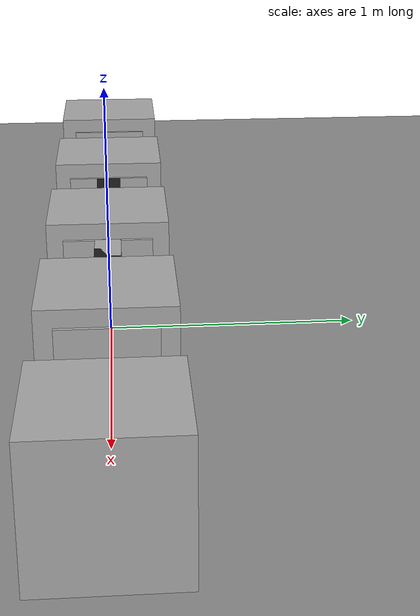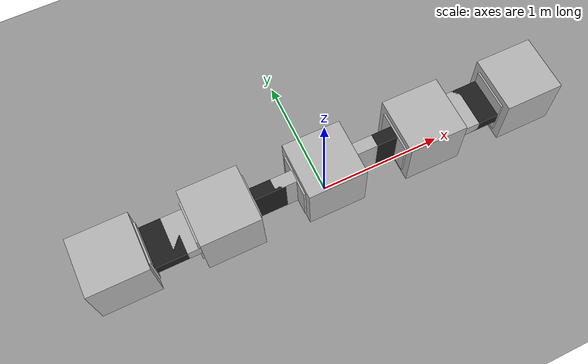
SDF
<?xml version="1.0" ?>
<sdf version="1.5">
  <world name="default">
    <physics type="ode">
      <ode>
        <constraints>
          <!-- Simulator.cpp -->
          <erp>0.1</erp>
          <cfm>10e-6</cfm>
        </constraints>
      </ode>
    </physics>
    <!-- A global light source -->
    <include>
      <uri>model://sun</uri>
    </include>
    <include>
      <uri>model://tol_ground</uri>
    </include>

    <include>
      <uri>model://temp_bot</uri>
    </include>

  </world>
</sdf>

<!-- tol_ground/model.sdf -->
<sdf version="1.5">
<!-- Custom ground plane -->
  <model name="tol_ground">
    <static>true</static>
    <link name="link">
      <collision name="collision">
        <geometry>
          <plane>
            <normal>0 0 1</normal>
            <size>100 100</size>
          </plane>
        </geometry>
        <surface>
          <friction>
            <ode>
              <!-- RobogenCollision.cpp -->
              <mu>1.0</mu>
              <mu2>1.0</mu2>
            </ode>
          </friction>
        </surface>
      </collision>
      <visual name="visual">
        <cast_shadows>false</cast_shadows>
        <geometry>
          <plane>
            <normal>0 0 1</normal>
            <size>100 100</size>
          </plane>
        </geometry>
        <material>
          <script>
            <uri>file://media/materials/scripts/gazebo.material</uri>
            <name>Gazebo/Grey</name>
          </script>
        </material>
      </visual>
    </link>
  </model>
<!-- END Custom ground plane -->
</sdf>

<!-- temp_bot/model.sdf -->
<sdf version="1.5">
  <model name="temp_bot">
    <static>false</static>
    <pose>0 0 0.3 0 -0 0</pose>
    <link name="link_Core_0">
      <self_collide>0</self_collide>
      <pose>6.92599e-310 2.122e-314 1.12466e-312 0 -0 0</pose>
      <inertial>
        <mass>55.4</mass>
        <inertia>
          <ixx>1.99648</ixx>
          <ixy>0</ixy>
          <ixz>0</ixz>
          <iyy>1.99648</iyy>
          <iyz>0</iyz>
          <izz>1.99648</izz>
        </inertia>
      </inertial>
      <collision name="collision">
        <pose>6.92599e-310 4.65218e-317 6.92599e-310 0 -0 0</pose>
        <geometry>
          <box>
            <size>0.465 0.465 0.465</size>
          </box>
        </geometry>
        <surface>
          <friction>
            <ode>
              <mu>1</mu>
              <mu2>1</mu2>
              <fdir1>9.43281e-144 1.6336e-18 1.95215e+233</fdir1>
              <slip1>0.1</slip1>
              <slip2>0.1</slip2>
            </ode>
            <bullet>
              <friction>1</friction>
              <friction2>1</friction2>
              <fdir1>9.43281e-144 1.6336e-18 1.95215e+233</fdir1>
              <rolling_friction>1</rolling_friction>
            </bullet>
          </friction>
        </surface>
      </collision>
      <visual name="visual">
        <pose>6.92599e-310 0 0 0 -0 0</pose>
        <geometry>
          <box>
            <size>0.465 0.465 0.465</size>
          </box>
        </geometry>
      </visual>
    </link>
    <link name="link_Hip1_0">
      <self_collide>0</self_collide>
      <pose>-0.24 4.65269e-317 4.65351e-317 -1.5708 0 3.14159</pose>
      <inertial>
        <mass>7</mass>
        <inertia>
          <ixx>0.134867</ixx>
          <ixy>0</ixy>
          <ixz>0</ixz>
          <iyy>0.0675646</iyy>
          <iyz>0</iyz>
          <izz>0.0675646</izz>
        </inertia>
      </inertial>
      <collision name="collision">
        <pose>6.92599e-310 0 0 0 -0 0</pose>
        <geometry>
          <box>
            <size>0.015 0.34 0.34</size>
          </box>
        </geometry>
        <surface>
          <friction>
            <ode>
              <mu>1</mu>
              <mu2>1</mu2>
              <fdir1>2.87124e-27 4.47273e+251 6.99641e+228</fdir1>
              <slip1>0.1</slip1>
              <slip2>0.1</slip2>
            </ode>
            <bullet>
              <friction>1</friction>
              <friction2>1</friction2>
              <fdir1>2.87124e-27 4.47273e+251 6.99641e+228</fdir1>
              <rolling_friction>1</rolling_friction>
            </bullet>
          </friction>
        </surface>
      </collision>
      <visual name="visual">
        <pose>6.92599e-310 0 0 0 -0 0</pose>
        <geometry>
          <box>
            <size>0.015 0.34 0.34</size>
          </box>
        </geometry>
      </visual>
    </link>
    <link name="link_Hip1_2">
      <self_collide>0</self_collide>
      <pose>-0.3235 9.30576e-317 4.65351e-317 -1.5708 0 3.14159</pose>
      <inertial>
        <mass>1.2</mass>
        <inertia>
          <ixx>0.01256</ixx>
          <ixy>0</ixy>
          <ixz>0</ixz>
          <iyy>0.00424</iyy>
          <iyz>0</iyz>
          <izz>0.0148</izz>
        </inertia>
      </inertial>
      <collision name="collision">
        <pose>6.92599e-310 0 0 0 -0 0</pose>
        <geometry>
          <box>
            <size>0.18 0.34 0.1</size>
          </box>
        </geometry>
        <surface>
          <friction>
            <ode>
              <mu>1</mu>
              <mu2>1</mu2>
              <fdir1>1.64968e-18 3.21781e+257 7.66955e+228</fdir1>
              <slip1>0.1</slip1>
              <slip2>0.1</slip2>
            </ode>
            <bullet>
              <friction>1</friction>
              <friction2>1</friction2>
              <fdir1>1.64968e-18 3.21781e+257 7.66955e+228</fdir1>
              <rolling_friction>1</rolling_friction>
            </bullet>
          </friction>
        </surface>
      </collision>
      <visual name="visual">
        <pose>6.92599e-310 0 0 0 -0 0</pose>
        <geometry>
          <box>
            <size>0.18 0.34 0.1</size>
          </box>
        </geometry>
      </visual>
    </link>
    <link name="link_Hip1_3">
      <self_collide>0</self_collide>
      <pose>-0.456 9.30576e-317 4.65351e-317 -1.5708 0 3.14159</pose>
      <inertial>
        <mass>9</mass>
        <inertia>
          <ixx>0.0942</ixx>
          <ixy>0</ixy>
          <ixz>0</ixz>
          <iyy>0.0525188</iyy>
          <iyz>0</iyz>
          <izz>0.131719</izz>
        </inertia>
      </inertial>
      <collision name="collision">
        <pose>6.92599e-310 0 0 0 -0 0</pose>
        <geometry>
          <box>
            <size>0.245 0.34 0.1</size>
          </box>
        </geometry>
        <surface>
          <friction>
            <ode>
              <mu>1</mu>
              <mu2>1</mu2>
              <fdir1>2.87124e-27 2.47403e-259 3.21781e+257</fdir1>
              <slip1>0.1</slip1>
              <slip2>0.1</slip2>
            </ode>
            <bullet>
              <friction>1</friction>
              <friction2>1</friction2>
              <fdir1>2.87124e-27 2.47403e-259 3.21781e+257</fdir1>
              <rolling_friction>1</rolling_friction>
            </bullet>
          </friction>
        </surface>
      </collision>
      <visual name="visual">
        <pose>6.92599e-310 0 0 0 -0 0</pose>
        <geometry>
          <box>
            <size>0.245 0.34 0.1</size>
          </box>
        </geometry>
        <material>
          <script>
            <uri>file://media/materials/scripts/gazebo.material</uri>
            <name>Gazebo/Black</name>
          </script>
        </material>
      </visual>
    </link>
    <link name="link_Hip1_1">
      <self_collide>0</self_collide>
      <pose>-0.587 9.30576e-317 4.65351e-317 -1.5708 0 3.14159</pose>
      <inertial>
        <mass>7</mass>
        <inertia>
          <ixx>0.134867</ixx>
          <ixy>0</ixy>
          <ixz>0</ixz>
          <iyy>0.0675646</iyy>
          <iyz>0</iyz>
          <izz>0.0675646</izz>
        </inertia>
      </inertial>
      <collision name="collision">
        <pose>6.92599e-310 0 0 0 -0 0</pose>
        <geometry>
          <box>
            <size>0.015 0.34 0.34</size>
          </box>
        </geometry>
        <surface>
          <friction>
            <ode>
              <mu>1</mu>
              <mu2>1</mu2>
              <fdir1>6.99641e+228 2.87124e-27 2.45653e+198</fdir1>
              <slip1>0.1</slip1>
              <slip2>0.1</slip2>
            </ode>
            <bullet>
              <friction>1</friction>
              <friction2>1</friction2>
              <fdir1>6.99641e+228 2.87124e-27 2.45653e+198</fdir1>
              <rolling_friction>1</rolling_friction>
            </bullet>
          </friction>
        </surface>
      </collision>
      <visual name="visual">
        <pose>6.92599e-310 0 0 0 -0 0</pose>
        <geometry>
          <box>
            <size>0.015 0.34 0.34</size>
          </box>
        </geometry>
      </visual>
    </link>
    <link name="link_UpperLeg1_0">
      <self_collide>0</self_collide>
      <pose>-0.827 9.30576e-317 4.65351e-317 -4.44089e-16 0 3.14159</pose>
      <inertial>
        <mass>14.9</mass>
        <inertia>
          <ixx>0.536959</ixx>
          <ixy>0</ixy>
          <ixz>0</ixz>
          <iyy>0.536959</iyy>
          <iyz>0</iyz>
          <izz>0.536959</izz>
        </inertia>
      </inertial>
      <collision name="collision">
        <pose>6.92599e-310 0 0 0 -0 0</pose>
        <geometry>
          <box>
            <size>0.465 0.465 0.465</size>
          </box>
        </geometry>
        <surface>
          <friction>
            <ode>
              <mu>1</mu>
              <mu2>1</mu2>
              <fdir1>4.63799e-317 4.63803e-317 4.63824e-317</fdir1>
              <slip1>0.1</slip1>
              <slip2>0.1</slip2>
            </ode>
            <bullet>
              <friction>1</friction>
              <friction2>1</friction2>
              <fdir1>4.63799e-317 4.63803e-317 4.63824e-317</fdir1>
              <rolling_friction>1</rolling_friction>
            </bullet>
          </friction>
        </surface>
      </collision>
      <visual name="visual">
        <pose>6.92599e-310 0 0 0 -0 0</pose>
        <geometry>
          <box>
            <size>0.465 0.465 0.465</size>
          </box>
        </geometry>
      </visual>
    </link>
    <link name="link_Knee1_0">
      <self_collide>0</self_collide>
      <pose>-1.067 9.30576e-317 4.65351e-317 -4.44089e-16 -0 3.14159</pose>
      <inertial>
        <mass>7</mass>
        <inertia>
          <ixx>0.134867</ixx>
          <ixy>0</ixy>
          <ixz>0</ixz>
          <iyy>0.0675646</iyy>
          <iyz>0</iyz>
          <izz>0.0675646</izz>
        </inertia>
      </inertial>
      <collision name="collision">
        <pose>0 0 0 0 -0 0</pose>
        <geometry>
          <box>
            <size>0.015 0.34 0.34</size>
          </box>
        </geometry>
        <surface>
          <friction>
            <ode>
              <mu>1</mu>
              <mu2>1</mu2>
              <fdir1>1.15102e-319 0 0</fdir1>
              <slip1>0.1</slip1>
              <slip2>0.1</slip2>
            </ode>
            <bullet>
              <friction>1</friction>
              <friction2>1</friction2>
              <fdir1>1.15102e-319 0 0</fdir1>
              <rolling_friction>1</rolling_friction>
            </bullet>
          </friction>
        </surface>
      </collision>
      <visual name="visual">
        <pose>0 0 0 0 -0 0</pose>
        <geometry>
          <box>
            <size>0.015 0.34 0.34</size>
          </box>
        </geometry>
      </visual>
    </link>
    <link name="link_Knee1_2">
      <self_collide>0</self_collide>
      <pose>-1.1505 9.30576e-317 4.65351e-317 -4.44089e-16 -0 3.14159</pose>
      <inertial>
        <mass>1.2</mass>
        <inertia>
          <ixx>0.01256</ixx>
          <ixy>0</ixy>
          <ixz>0</ixz>
          <iyy>0.00424</iyy>
          <iyz>0</iyz>
          <izz>0.0148</izz>
        </inertia>
      </inertial>
      <collision name="collision">
        <pose>0 0 0 0 -0 0</pose>
        <geometry>
          <box>
            <size>0.18 0.34 0.1</size>
          </box>
        </geometry>
        <surface>
          <friction>
            <ode>
              <mu>1</mu>
              <mu2>1</mu2>
              <fdir1>3.10334e+39 5.14097e+151 9.92239e+260</fdir1>
              <slip1>0.1</slip1>
              <slip2>0.1</slip2>
            </ode>
            <bullet>
              <friction>1</friction>
              <friction2>1</friction2>
              <fdir1>3.10334e+39 5.14097e+151 9.92239e+260</fdir1>
              <rolling_friction>1</rolling_friction>
            </bullet>
          </friction>
        </surface>
      </collision>
      <visual name="visual">
        <pose>0 0 0 0 -0 0</pose>
        <geometry>
          <box>
            <size>0.18 0.34 0.1</size>
          </box>
        </geometry>
      </visual>
    </link>
    <link name="link_Knee1_3">
      <self_collide>0</self_collide>
      <pose>-1.283 9.30576e-317 4.65351e-317 -4.44089e-16 -0 3.14159</pose>
      <inertial>
        <mass>9</mass>
        <inertia>
          <ixx>0.0942</ixx>
          <ixy>0</ixy>
          <ixz>0</ixz>
          <iyy>0.0525188</iyy>
          <iyz>0</iyz>
          <izz>0.131719</izz>
        </inertia>
      </inertial>
      <collision name="collision">
        <pose>0 0 0 0 -0 0</pose>
        <geometry>
          <box>
            <size>0.245 0.34 0.1</size>
          </box>
        </geometry>
        <surface>
          <friction>
            <ode>
              <mu>1</mu>
              <mu2>1</mu2>
              <fdir1>0 0 0</fdir1>
              <slip1>0.1</slip1>
              <slip2>0.1</slip2>
            </ode>
            <bullet>
              <friction>1</friction>
              <friction2>1</friction2>
              <fdir1>0 0 0</fdir1>
              <rolling_friction>1</rolling_friction>
            </bullet>
          </friction>
        </surface>
      </collision>
      <visual name="visual">
        <pose>0 0 0 0 -0 0</pose>
        <geometry>
          <box>
            <size>0.245 0.34 0.1</size>
          </box>
        </geometry>
        <material>
          <script>
            <uri>file://media/materials/scripts/gazebo.material</uri>
            <name>Gazebo/Black</name>
          </script>
        </material>
      </visual>
    </link>
    <link name="link_Knee1_1">
      <self_collide>0</self_collide>
      <pose>-1.414 9.30576e-317 4.65351e-317 -4.44089e-16 -0 3.14159</pose>
      <inertial>
        <mass>7</mass>
        <inertia>
          <ixx>0.134867</ixx>
          <ixy>0</ixy>
          <ixz>0</ixz>
          <iyy>0.0675646</iyy>
          <iyz>0</iyz>
          <izz>0.0675646</izz>
        </inertia>
      </inertial>
      <collision name="collision">
        <pose>0 0 0 0 -0 0</pose>
        <geometry>
          <box>
            <size>0.015 0.34 0.34</size>
          </box>
        </geometry>
        <surface>
          <friction>
            <ode>
              <mu>1</mu>
              <mu2>1</mu2>
              <fdir1>0 0 0</fdir1>
              <slip1>0.1</slip1>
              <slip2>0.1</slip2>
            </ode>
            <bullet>
              <friction>1</friction>
              <friction2>1</friction2>
              <fdir1>0 0 0</fdir1>
              <rolling_friction>1</rolling_friction>
            </bullet>
          </friction>
        </surface>
      </collision>
      <visual name="visual">
        <pose>0 0 0 0 -0 0</pose>
        <geometry>
          <box>
            <size>0.015 0.34 0.34</size>
          </box>
        </geometry>
      </visual>
    </link>
    <link name="link_LowerLeg1_0">
      <self_collide>0</self_collide>
      <pose>-1.654 9.30576e-317 4.65351e-317 -4.44089e-16 -0 3.14159</pose>
      <inertial>
        <mass>14.9</mass>
        <inertia>
          <ixx>0.536959</ixx>
          <ixy>0</ixy>
          <ixz>0</ixz>
          <iyy>0.536959</iyy>
          <iyz>0</iyz>
          <izz>0.536959</izz>
        </inertia>
      </inertial>
      <collision name="collision">
        <pose>0 0 0 0 -0 0</pose>
        <geometry>
          <box>
            <size>0.465 0.465 0.465</size>
          </box>
        </geometry>
        <surface>
          <friction>
            <ode>
              <mu>1</mu>
              <mu2>1</mu2>
              <fdir1>4.67241e-317 4.67245e-317 4.67266e-317</fdir1>
              <slip1>0.1</slip1>
              <slip2>0.1</slip2>
            </ode>
            <bullet>
              <friction>1</friction>
              <friction2>1</friction2>
              <fdir1>4.67241e-317 4.67245e-317 4.67266e-317</fdir1>
              <rolling_friction>1</rolling_friction>
            </bullet>
          </friction>
        </surface>
      </collision>
      <visual name="visual">
        <pose>0 0 0 0 -0 0</pose>
        <geometry>
          <box>
            <size>0.465 0.465 0.465</size>
          </box>
        </geometry>
      </visual>
    </link>
    <link name="link_Hip2_0">
      <self_collide>0</self_collide>
      <pose>0.24 0 0 -1.5708 0 0</pose>
      <inertial>
        <mass>7</mass>
        <inertia>
          <ixx>0.134867</ixx>
          <ixy>0</ixy>
          <ixz>0</ixz>
          <iyy>0.0675646</iyy>
          <iyz>0</iyz>
          <izz>0.0675646</izz>
        </inertia>
      </inertial>
      <collision name="collision">
        <pose>0 0 0 0 -0 0</pose>
        <geometry>
          <box>
            <size>0.015 0.34 0.34</size>
          </box>
        </geometry>
        <surface>
          <friction>
            <ode>
              <mu>1</mu>
              <mu2>1</mu2>
              <fdir1>0 0 0</fdir1>
              <slip1>0.1</slip1>
              <slip2>0.1</slip2>
            </ode>
            <bullet>
              <friction>1</friction>
              <friction2>1</friction2>
              <fdir1>0 0 0</fdir1>
              <rolling_friction>1</rolling_friction>
            </bullet>
          </friction>
        </surface>
      </collision>
      <visual name="visual">
        <pose>0 0 0 0 -0 0</pose>
        <geometry>
          <box>
            <size>0.015 0.34 0.34</size>
          </box>
        </geometry>
      </visual>
    </link>
    <link name="link_Hip2_2">
      <self_collide>0</self_collide>
      <pose>0.3235 0 0 -1.5708 0 0</pose>
      <inertial>
        <mass>1.2</mass>
        <inertia>
          <ixx>0.01256</ixx>
          <ixy>0</ixy>
          <ixz>0</ixz>
          <iyy>0.00424</iyy>
          <iyz>0</iyz>
          <izz>0.0148</izz>
        </inertia>
      </inertial>
      <collision name="collision">
        <pose>0 0 0 0 -0 0</pose>
        <geometry>
          <box>
            <size>0.18 0.34 0.1</size>
          </box>
        </geometry>
        <surface>
          <friction>
            <ode>
              <mu>1</mu>
              <mu2>1</mu2>
              <fdir1>0 0 0</fdir1>
              <slip1>0.1</slip1>
              <slip2>0.1</slip2>
            </ode>
            <bullet>
              <friction>1</friction>
              <friction2>1</friction2>
              <fdir1>0 0 0</fdir1>
              <rolling_friction>1</rolling_friction>
            </bullet>
          </friction>
        </surface>
      </collision>
      <visual name="visual">
        <pose>0 0 0 0 -0 0</pose>
        <geometry>
          <box>
            <size>0.18 0.34 0.1</size>
          </box>
        </geometry>
      </visual>
    </link>
    <link name="link_Hip2_3">
      <self_collide>0</self_collide>
      <pose>0.456 0 0 -1.5708 0 0</pose>
      <inertial>
        <mass>9</mass>
        <inertia>
          <ixx>0.0942</ixx>
          <ixy>0</ixy>
          <ixz>0</ixz>
          <iyy>0.0525188</iyy>
          <iyz>0</iyz>
          <izz>0.131719</izz>
        </inertia>
      </inertial>
      <collision name="collision">
        <pose>0 0 0 0 -0 0</pose>
        <geometry>
          <box>
            <size>0.245 0.34 0.1</size>
          </box>
        </geometry>
        <surface>
          <friction>
            <ode>
              <mu>1</mu>
              <mu2>1</mu2>
              <fdir1>0 0 0</fdir1>
              <slip1>0.1</slip1>
              <slip2>0.1</slip2>
            </ode>
            <bullet>
              <friction>1</friction>
              <friction2>1</friction2>
              <fdir1>0 0 0</fdir1>
              <rolling_friction>1</rolling_friction>
            </bullet>
          </friction>
        </surface>
      </collision>
      <visual name="visual">
        <pose>0 0 0 0 -0 0</pose>
        <geometry>
          <box>
            <size>0.245 0.34 0.1</size>
          </box>
        </geometry>
        <material>
          <script>
            <uri>file://media/materials/scripts/gazebo.material</uri>
            <name>Gazebo/Black</name>
          </script>
        </material>
      </visual>
    </link>
    <link name="link_Hip2_1">
      <self_collide>0</self_collide>
      <pose>0.587 0 0 -1.5708 0 0</pose>
      <inertial>
        <mass>7</mass>
        <inertia>
          <ixx>0.134867</ixx>
          <ixy>0</ixy>
          <ixz>0</ixz>
          <iyy>0.0675646</iyy>
          <iyz>0</iyz>
          <izz>0.0675646</izz>
        </inertia>
      </inertial>
      <collision name="collision">
        <pose>0 0 0 0 -0 0</pose>
        <geometry>
          <box>
            <size>0.015 0.34 0.34</size>
          </box>
        </geometry>
        <surface>
          <friction>
            <ode>
              <mu>1</mu>
              <mu2>1</mu2>
              <fdir1>0 0 0</fdir1>
              <slip1>0.1</slip1>
              <slip2>0.1</slip2>
            </ode>
            <bullet>
              <friction>1</friction>
              <friction2>1</friction2>
              <fdir1>0 0 0</fdir1>
              <rolling_friction>1</rolling_friction>
            </bullet>
          </friction>
        </surface>
      </collision>
      <visual name="visual">
        <pose>0 0 0 0 -0 0</pose>
        <geometry>
          <box>
            <size>0.015 0.34 0.34</size>
          </box>
        </geometry>
      </visual>
    </link>
    <link name="link_UpperLeg2_0">
      <self_collide>0</self_collide>
      <pose>0.827 0 0 -3.14159 0 0</pose>
      <inertial>
        <mass>14.9</mass>
        <inertia>
          <ixx>0.536959</ixx>
          <ixy>0</ixy>
          <ixz>0</ixz>
          <iyy>0.536959</iyy>
          <iyz>0</iyz>
          <izz>0.536959</izz>
        </inertia>
      </inertial>
      <collision name="collision">
        <pose>0 0 0 0 -0 0</pose>
        <geometry>
          <box>
            <size>0.465 0.465 0.465</size>
          </box>
        </geometry>
        <surface>
          <friction>
            <ode>
              <mu>1</mu>
              <mu2>1</mu2>
              <fdir1>4.67787e-317 4.67791e-317 4.67812e-317</fdir1>
              <slip1>0.1</slip1>
              <slip2>0.1</slip2>
            </ode>
            <bullet>
              <friction>1</friction>
              <friction2>1</friction2>
              <fdir1>4.67787e-317 4.67791e-317 4.67812e-317</fdir1>
              <rolling_friction>1</rolling_friction>
            </bullet>
          </friction>
        </surface>
      </collision>
      <visual name="visual">
        <pose>0 0 0 0 -0 0</pose>
        <geometry>
          <box>
            <size>0.465 0.465 0.465</size>
          </box>
        </geometry>
      </visual>
    </link>
    <link name="link_Knee2_0">
      <self_collide>0</self_collide>
      <pose>1.067 0 0 -3.14159 -0 0</pose>
      <inertial>
        <mass>7</mass>
        <inertia>
          <ixx>0.134867</ixx>
          <ixy>0</ixy>
          <ixz>0</ixz>
          <iyy>0.0675646</iyy>
          <iyz>0</iyz>
          <izz>0.0675646</izz>
        </inertia>
      </inertial>
      <collision name="collision">
        <pose>0 0 0 0 -0 0</pose>
        <geometry>
          <box>
            <size>0.015 0.34 0.34</size>
          </box>
        </geometry>
        <surface>
          <friction>
            <ode>
              <mu>1</mu>
              <mu2>1</mu2>
              <fdir1>0 0 0</fdir1>
              <slip1>0.1</slip1>
              <slip2>0.1</slip2>
            </ode>
            <bullet>
              <friction>1</friction>
              <friction2>1</friction2>
              <fdir1>0 0 0</fdir1>
              <rolling_friction>1</rolling_friction>
            </bullet>
          </friction>
        </surface>
      </collision>
      <visual name="visual">
        <pose>0 0 0 0 -0 0</pose>
        <geometry>
          <box>
            <size>0.015 0.34 0.34</size>
          </box>
        </geometry>
      </visual>
    </link>
    <link name="link_Knee2_2">
      <self_collide>0</self_collide>
      <pose>1.1505 0 0 -3.14159 -0 0</pose>
      <inertial>
        <mass>1.2</mass>
        <inertia>
          <ixx>0.01256</ixx>
          <ixy>0</ixy>
          <ixz>0</ixz>
          <iyy>0.00424</iyy>
          <iyz>0</iyz>
          <izz>0.0148</izz>
        </inertia>
      </inertial>
      <collision name="collision">
        <pose>0 0 0 0 -0 0</pose>
        <geometry>
          <box>
            <size>0.18 0.34 0.1</size>
          </box>
        </geometry>
        <surface>
          <friction>
            <ode>
              <mu>1</mu>
              <mu2>1</mu2>
              <fdir1>0 0 0</fdir1>
              <slip1>0.1</slip1>
              <slip2>0.1</slip2>
            </ode>
            <bullet>
              <friction>1</friction>
              <friction2>1</friction2>
              <fdir1>0 0 0</fdir1>
              <rolling_friction>1</rolling_friction>
            </bullet>
          </friction>
        </surface>
      </collision>
      <visual name="visual">
        <pose>0 0 0 0 -0 0</pose>
        <geometry>
          <box>
            <size>0.18 0.34 0.1</size>
          </box>
        </geometry>
      </visual>
    </link>
    <link name="link_Knee2_3">
      <self_collide>0</self_collide>
      <pose>1.283 0 0 -3.14159 -0 0</pose>
      <inertial>
        <mass>9</mass>
        <inertia>
          <ixx>0.0942</ixx>
          <ixy>0</ixy>
          <ixz>0</ixz>
          <iyy>0.0525188</iyy>
          <iyz>0</iyz>
          <izz>0.131719</izz>
        </inertia>
      </inertial>
      <collision name="collision">
        <pose>0 0 0 0 -0 0</pose>
        <geometry>
          <box>
            <size>0.245 0.34 0.1</size>
          </box>
        </geometry>
        <surface>
          <friction>
            <ode>
              <mu>1</mu>
              <mu2>1</mu2>
              <fdir1>0 0 0</fdir1>
              <slip1>0.1</slip1>
              <slip2>0.1</slip2>
            </ode>
            <bullet>
              <friction>1</friction>
              <friction2>1</friction2>
              <fdir1>0 0 0</fdir1>
              <rolling_friction>1</rolling_friction>
            </bullet>
          </friction>
        </surface>
      </collision>
      <visual name="visual">
        <pose>0 0 0 0 -0 0</pose>
        <geometry>
          <box>
            <size>0.245 0.34 0.1</size>
          </box>
        </geometry>
        <material>
          <script>
            <uri>file://media/materials/scripts/gazebo.material</uri>
            <name>Gazebo/Black</name>
          </script>
        </material>
      </visual>
    </link>
    <link name="link_Knee2_1">
      <self_collide>0</self_collide>
      <pose>1.414 0 0 -3.14159 -0 0</pose>
      <inertial>
        <mass>7</mass>
        <inertia>
          <ixx>0.134867</ixx>
          <ixy>0</ixy>
          <ixz>0</ixz>
          <iyy>0.0675646</iyy>
          <iyz>0</iyz>
          <izz>0.0675646</izz>
        </inertia>
      </inertial>
      <collision name="collision">
        <pose>0 0 0 0 -0 0</pose>
        <geometry>
          <box>
            <size>0.015 0.34 0.34</size>
          </box>
        </geometry>
        <surface>
          <friction>
            <ode>
              <mu>1</mu>
              <mu2>1</mu2>
              <fdir1>0 0 0</fdir1>
              <slip1>0.1</slip1>
              <slip2>0.1</slip2>
            </ode>
            <bullet>
              <friction>1</friction>
              <friction2>1</friction2>
              <fdir1>0 0 0</fdir1>
              <rolling_friction>1</rolling_friction>
            </bullet>
          </friction>
        </surface>
      </collision>
      <visual name="visual">
        <pose>0 0 0 0 -0 0</pose>
        <geometry>
          <box>
            <size>0.015 0.34 0.34</size>
          </box>
        </geometry>
      </visual>
    </link>
    <link name="link_LowerLeg2_0">
      <self_collide>0</self_collide>
      <pose>1.654 0 0 -3.14159 -0 0</pose>
      <inertial>
        <mass>14.9</mass>
        <inertia>
          <ixx>0.536959</ixx>
          <ixy>0</ixy>
          <ixz>0</ixz>
          <iyy>0.536959</iyy>
          <iyz>0</iyz>
          <izz>0.536959</izz>
        </inertia>
      </inertial>
      <collision name="collision">
        <pose>0 0 0 0 -0 0</pose>
        <geometry>
          <box>
            <size>0.465 0.465 0.465</size>
          </box>
        </geometry>
        <surface>
          <friction>
            <ode>
              <mu>1</mu>
              <mu2>1</mu2>
              <fdir1>4.68332e-317 4.68335e-317 4.68357e-317</fdir1>
              <slip1>0.1</slip1>
              <slip2>0.1</slip2>
            </ode>
            <bullet>
              <friction>1</friction>
              <friction2>1</friction2>
              <fdir1>4.68332e-317 4.68335e-317 4.68357e-317</fdir1>
              <rolling_friction>1</rolling_friction>
            </bullet>
          </friction>
        </surface>
      </collision>
      <visual name="visual">
        <pose>0 0 0 0 -0 0</pose>
        <geometry>
          <box>
            <size>0.465 0.465 0.465</size>
          </box>
        </geometry>
      </visual>
    </link>
    <joint type="revolute" name="joint_link_Hip1_0_link_Hip1_2">
      <pose>-0.09 0 0 0 -0 0</pose>
      <parent>link_Hip1_0</parent>
      <child>link_Hip1_2</child>
      <axis>
        <xyz>1 0 0 </xyz>
        <use_parent_model_frame>0</use_parent_model_frame>
        <limit>
          <lower>0</lower>
          <upper>0</upper>
          <effort>-1</effort>
          <velocity>-1</velocity>
          <dissipation>1</dissipation>
        </limit>
      </axis>
    </joint>
    <joint type="revolute" name="joint_link_Hip1_3_link_Hip1_2">
      <pose>0.05 0 0 0 -0 0</pose>
      <parent>link_Hip1_3</parent>
      <child>link_Hip1_2</child>
      <axis>
        <xyz>0 1 0 </xyz>
        <use_parent_model_frame>0</use_parent_model_frame>
        <limit>
          <lower>-0.785398</lower>
          <upper>0.785398</upper>
          <effort>1765.8</effort>
          <velocity>-1</velocity>
          <dissipation>1</dissipation>
        </limit>
      </axis>
    </joint>
    <joint type="revolute" name="joint_link_Hip1_3_link_Hip1_1">
      <pose>-0.0075 0 0 0 -0 0</pose>
      <parent>link_Hip1_3</parent>
      <child>link_Hip1_1</child>
      <axis>
        <xyz>1 0 0 </xyz>
        <use_parent_model_frame>0</use_parent_model_frame>
        <limit>
          <lower>0</lower>
          <upper>0</upper>
          <effort>-1</effort>
          <velocity>-1</velocity>
          <dissipation>1</dissipation>
        </limit>
      </axis>
    </joint>
    <joint type="revolute" name="joint_link_Core_0_link_Hip1_0">
      <pose>-0.0075 0 0 0 -0 0</pose>
      <parent>link_Core_0</parent>
      <child>link_Hip1_0</child>
      <axis>
        <xyz>-1 0 0 </xyz>
        <use_parent_model_frame>0</use_parent_model_frame>
        <limit>
          <lower>0</lower>
          <upper>0</upper>
          <effort>-1</effort>
          <velocity>-1</velocity>
          <dissipation>1</dissipation>
        </limit>
      </axis>
    </joint>
    <joint type="revolute" name="joint_link_Hip1_1_link_UpperLeg1_0">
      <pose>-0.2325 0 0 0 -0 0</pose>
      <parent>link_Hip1_1</parent>
      <child>link_UpperLeg1_0</child>
      <axis>
        <xyz>-1 0 0 </xyz>
        <use_parent_model_frame>0</use_parent_model_frame>
        <limit>
          <lower>0</lower>
          <upper>0</upper>
          <effort>-1</effort>
          <velocity>-1</velocity>
          <dissipation>1</dissipation>
        </limit>
      </axis>
    </joint>
    <joint type="revolute" name="joint_link_Knee1_0_link_Knee1_2">
      <pose>-0.09 0 0 0 -0 0</pose>
      <parent>link_Knee1_0</parent>
      <child>link_Knee1_2</child>
      <axis>
        <xyz>1 0 0 </xyz>
        <use_parent_model_frame>0</use_parent_model_frame>
        <limit>
          <lower>0</lower>
          <upper>0</upper>
          <effort>-1</effort>
          <velocity>-1</velocity>
          <dissipation>1</dissipation>
        </limit>
      </axis>
    </joint>
    <joint type="revolute" name="joint_link_Knee1_3_link_Knee1_2">
      <pose>0.05 0 0 0 -0 0</pose>
      <parent>link_Knee1_3</parent>
      <child>link_Knee1_2</child>
      <axis>
        <xyz>0 1 0 </xyz>
        <use_parent_model_frame>0</use_parent_model_frame>
        <limit>
          <lower>-0.785398</lower>
          <upper>0.785398</upper>
          <effort>1765.8</effort>
          <velocity>-1</velocity>
          <dissipation>1</dissipation>
        </limit>
      </axis>
    </joint>
    <joint type="revolute" name="joint_link_Knee1_3_link_Knee1_1">
      <pose>-0.0075 0 0 0 -0 0</pose>
      <parent>link_Knee1_3</parent>
      <child>link_Knee1_1</child>
      <axis>
        <xyz>1 0 0 </xyz>
        <use_parent_model_frame>0</use_parent_model_frame>
        <limit>
          <lower>0</lower>
          <upper>0</upper>
          <effort>-1</effort>
          <velocity>-1</velocity>
          <dissipation>1</dissipation>
        </limit>
      </axis>
    </joint>
    <joint type="revolute" name="joint_link_UpperLeg1_0_link_Knee1_0">
      <pose>-0.0075 0 0 0 -0 0</pose>
      <parent>link_UpperLeg1_0</parent>
      <child>link_Knee1_0</child>
      <axis>
        <xyz>-1 0 0 </xyz>
        <use_parent_model_frame>0</use_parent_model_frame>
        <limit>
          <lower>0</lower>
          <upper>0</upper>
          <effort>-1</effort>
          <velocity>-1</velocity>
          <dissipation>1</dissipation>
        </limit>
      </axis>
    </joint>
    <joint type="revolute" name="joint_link_Knee1_1_link_LowerLeg1_0">
      <pose>-0.2325 0 0 0 -0 0</pose>
      <parent>link_Knee1_1</parent>
      <child>link_LowerLeg1_0</child>
      <axis>
        <xyz>-1 0 0 </xyz>
        <use_parent_model_frame>0</use_parent_model_frame>
        <limit>
          <lower>0</lower>
          <upper>0</upper>
          <effort>-1</effort>
          <velocity>-1</velocity>
          <dissipation>1</dissipation>
        </limit>
      </axis>
    </joint>
    <joint type="revolute" name="joint_link_Hip2_0_link_Hip2_2">
      <pose>-0.09 0 0 0 -0 0</pose>
      <parent>link_Hip2_0</parent>
      <child>link_Hip2_2</child>
      <axis>
        <xyz>1 0 0 </xyz>
        <use_parent_model_frame>0</use_parent_model_frame>
        <limit>
          <lower>0</lower>
          <upper>0</upper>
          <effort>-1</effort>
          <velocity>-1</velocity>
          <dissipation>1</dissipation>
        </limit>
      </axis>
    </joint>
    <joint type="revolute" name="joint_link_Hip2_3_link_Hip2_2">
      <pose>0.05 0 0 0 -0 0</pose>
      <parent>link_Hip2_3</parent>
      <child>link_Hip2_2</child>
      <axis>
        <xyz>0 1 0 </xyz>
        <use_parent_model_frame>0</use_parent_model_frame>
        <limit>
          <lower>-0.785398</lower>
          <upper>0.785398</upper>
          <effort>1765.8</effort>
          <velocity>-1</velocity>
          <dissipation>1</dissipation>
        </limit>
      </axis>
    </joint>
    <joint type="revolute" name="joint_link_Hip2_3_link_Hip2_1">
      <pose>-0.0075 0 0 0 -0 0</pose>
      <parent>link_Hip2_3</parent>
      <child>link_Hip2_1</child>
      <axis>
        <xyz>1 0 0 </xyz>
        <use_parent_model_frame>0</use_parent_model_frame>
        <limit>
          <lower>0</lower>
          <upper>0</upper>
          <effort>-1</effort>
          <velocity>-1</velocity>
          <dissipation>1</dissipation>
        </limit>
      </axis>
    </joint>
    <joint type="revolute" name="joint_link_Core_0_link_Hip2_0">
      <pose>-0.0075 0 0 0 -0 0</pose>
      <parent>link_Core_0</parent>
      <child>link_Hip2_0</child>
      <axis>
        <xyz>-1 0 0 </xyz>
        <use_parent_model_frame>0</use_parent_model_frame>
        <limit>
          <lower>0</lower>
          <upper>0</upper>
          <effort>-1</effort>
          <velocity>-1</velocity>
          <dissipation>1</dissipation>
        </limit>
      </axis>
    </joint>
    <joint type="revolute" name="joint_link_Hip2_1_link_UpperLeg2_0">
      <pose>-0.2325 0 0 0 -0 0</pose>
      <parent>link_Hip2_1</parent>
      <child>link_UpperLeg2_0</child>
      <axis>
        <xyz>-1 0 0 </xyz>
        <use_parent_model_frame>0</use_parent_model_frame>
        <limit>
          <lower>0</lower>
          <upper>0</upper>
          <effort>-1</effort>
          <velocity>-1</velocity>
          <dissipation>1</dissipation>
        </limit>
      </axis>
    </joint>
    <joint type="revolute" name="joint_link_Knee2_0_link_Knee2_2">
      <pose>-0.09 0 0 0 -0 0</pose>
      <parent>link_Knee2_0</parent>
      <child>link_Knee2_2</child>
      <axis>
        <xyz>1 0 0 </xyz>
        <use_parent_model_frame>0</use_parent_model_frame>
        <limit>
          <lower>0</lower>
          <upper>0</upper>
          <effort>-1</effort>
          <velocity>-1</velocity>
          <dissipation>1</dissipation>
        </limit>
      </axis>
    </joint>
    <joint type="revolute" name="joint_link_Knee2_3_link_Knee2_2">
      <pose>0.05 0 0 0 -0 0</pose>
      <parent>link_Knee2_3</parent>
      <child>link_Knee2_2</child>
      <axis>
        <xyz>0 1 0 </xyz>
        <use_parent_model_frame>0</use_parent_model_frame>
        <limit>
          <lower>-0.785398</lower>
          <upper>0.785398</upper>
          <effort>1765.8</effort>
          <velocity>-1</velocity>
          <dissipation>1</dissipation>
        </limit>
      </axis>
    </joint>
    <joint type="revolute" name="joint_link_Knee2_3_link_Knee2_1">
      <pose>-0.0075 0 0 0 -0 0</pose>
      <parent>link_Knee2_3</parent>
      <child>link_Knee2_1</child>
      <axis>
        <xyz>1 0 0 </xyz>
        <use_parent_model_frame>0</use_parent_model_frame>
        <limit>
          <lower>0</lower>
          <upper>0</upper>
          <effort>-1</effort>
          <velocity>-1</velocity>
          <dissipation>1</dissipation>
        </limit>
      </axis>
    </joint>
    <joint type="revolute" name="joint_link_UpperLeg2_0_link_Knee2_0">
      <pose>-0.0075 0 0 0 -0 0</pose>
      <parent>link_UpperLeg2_0</parent>
      <child>link_Knee2_0</child>
      <axis>
        <xyz>-1 0 0 </xyz>
        <use_parent_model_frame>0</use_parent_model_frame>
        <limit>
          <lower>0</lower>
          <upper>0</upper>
          <effort>-1</effort>
          <velocity>-1</velocity>
          <dissipation>1</dissipation>
        </limit>
      </axis>
    </joint>
    <joint type="revolute" name="joint_link_Knee2_1_link_LowerLeg2_0">
      <pose>-0.2325 0 0 0 -0 0</pose>
      <parent>link_Knee2_1</parent>
      <child>link_LowerLeg2_0</child>
      <axis>
        <xyz>-1 0 0 </xyz>
        <use_parent_model_frame>0</use_parent_model_frame>
        <limit>
          <lower>0</lower>
          <upper>0</upper>
          <effort>-1</effort>
          <velocity>-1</velocity>
          <dissipation>1</dissipation>
        </limit>
      </axis>
    </joint>
    <plugin name="control" filename="libtolmodelcontrol.so">
      <tol:settings xmlns:tol="http://elte.me">
        <tol:motor type="servo" joint="joint_link_Hip1_3_link_Hip1_2" part_id="Hip1" io_id="0" velocityDriven="0" gain="5000"/>
        <tol:motor type="servo" joint="joint_link_Knee1_3_link_Knee1_2" part_id="Knee1" io_id="0" velocityDriven="0" gain="5000"/>
        <tol:motor type="servo" joint="joint_link_Hip2_3_link_Hip2_2" part_id="Hip2" io_id="0" velocityDriven="0" gain="5000"/>
        <tol:motor type="servo" joint="joint_link_Knee2_3_link_Knee2_2" part_id="Knee2" io_id="0" velocityDriven="0" gain="5000"/>
        <tol:brain>
          <tol:neuron id="Core-0" type="simple" layer="input">
            <tol:io_pair part_id="Core" io_id="0"/>
            <tol:gain>1</tol:gain>
          </tol:neuron>
          <tol:neuron id="Core-1" type="simple" layer="input">
            <tol:io_pair part_id="Core" io_id="1"/>
            <tol:gain>1</tol:gain>
          </tol:neuron>
          <tol:neuron id="Core-2" type="simple" layer="input">
            <tol:io_pair part_id="Core" io_id="2"/>
            <tol:gain>1</tol:gain>
          </tol:neuron>
          <tol:neuron id="Core-3" type="simple" layer="input">
            <tol:io_pair part_id="Core" io_id="3"/>
            <tol:gain>1</tol:gain>
          </tol:neuron>
          <tol:neuron id="Core-4" type="simple" layer="input">
            <tol:io_pair part_id="Core" io_id="4"/>
            <tol:gain>1</tol:gain>
          </tol:neuron>
          <tol:neuron id="Core-5" type="simple" layer="input">
            <tol:io_pair part_id="Core" io_id="5"/>
            <tol:gain>1</tol:gain>
          </tol:neuron>
          <tol:neuron id="Hip1-0" type="oscillator" layer="output">
            <tol:io_pair part_id="Hip1" io_id="0"/>
            <tol:period>0.8</tol:period>
            <tol:phase_offset>-0.8</tol:phase_offset>
            <tol:gain>1</tol:gain>
          </tol:neuron>
          <tol:neuron id="Hip2-0" type="oscillator" layer="output">
            <tol:io_pair part_id="Hip2" io_id="0"/>
            <tol:period>0.8</tol:period>
            <tol:phase_offset>-0.95</tol:phase_offset>
            <tol:gain>1</tol:gain>
          </tol:neuron>
          <tol:neuron id="Knee1-0" type="oscillator" layer="output">
            <tol:io_pair part_id="Knee1" io_id="0"/>
            <tol:period>0.8</tol:period>
            <tol:phase_offset>0.2</tol:phase_offset>
            <tol:gain>1</tol:gain>
          </tol:neuron>
          <tol:neuron id="Knee2-0" type="oscillator" layer="output">
            <tol:io_pair part_id="Knee2" io_id="0"/>
            <tol:period>0.8</tol:period>
            <tol:phase_offset>-1</tol:phase_offset>
            <tol:gain>1</tol:gain>
          </tol:neuron>
        </tol:brain>
      </tol:settings>
    </plugin>
  </model>
</sdf>
